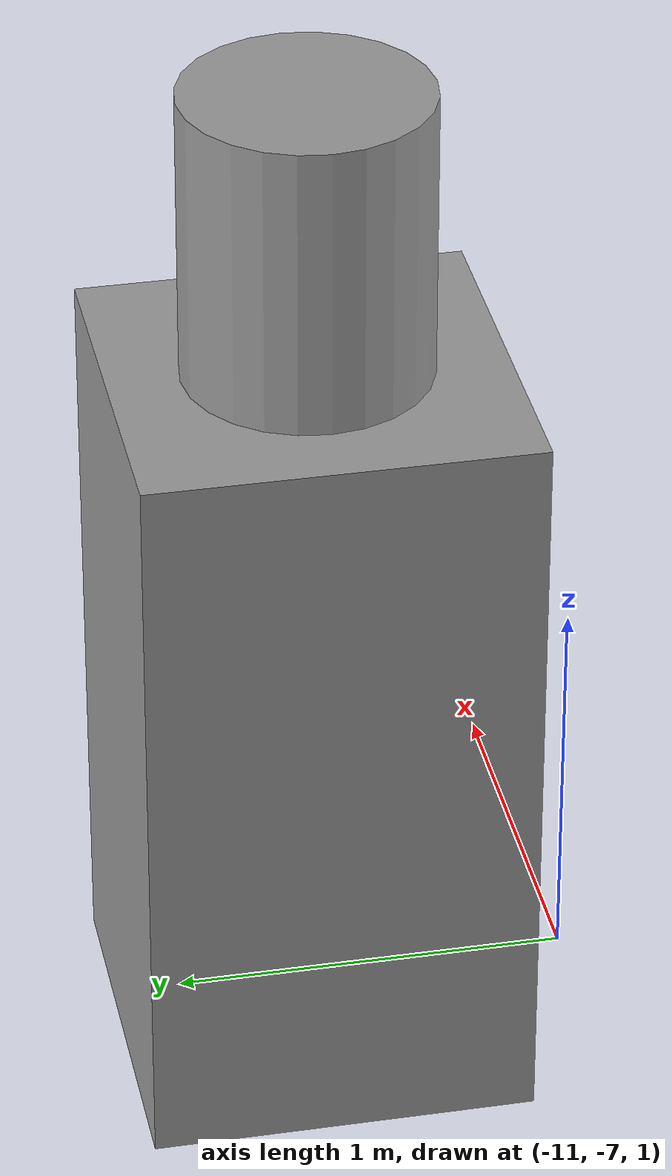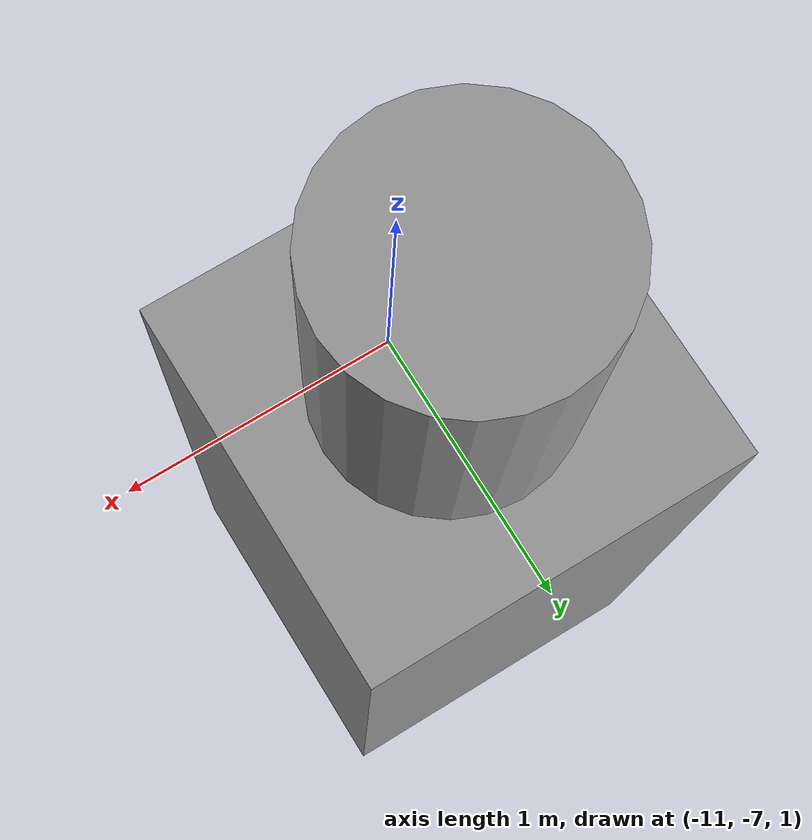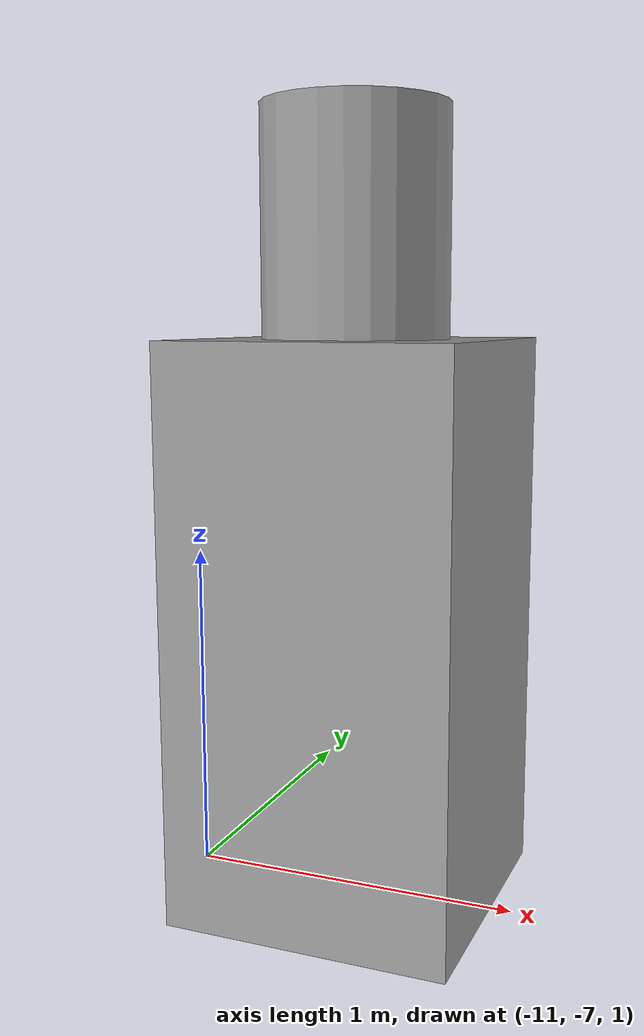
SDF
<?xml version='1.0'?>
<sdf version='1.6'>
  <model name='water_dispenser'>
    <link name='link_5'>
      <pose frame=''>-10.728 -6.39003 1.64708 0 -0 0</pose>
      <inertial>
        <mass>1.9827</mass>
        <inertia>
          <ixx>0.814745</ixx>
          <ixy>0</ixy>
          <ixz>0</ixz>
          <iyy>0.814745</iyy>
          <iyz>0</iyz>
          <izz>0.330451</izz>
        </inertia>
        <pose frame=''>0 0 0 0 -0 0</pose>
      </inertial>
      <self_collide>0</self_collide>
      <kinematic>0</kinematic>
      <visual name='visual'>
        <pose frame=''>0 0 0 0 -0 0</pose>
        <geometry>
          <box>
            <size>1 1 1.9827</size>
          </box>
        </geometry>
        <material>
          <lighting>1</lighting>
          <script>
            <uri>file://media/materials/scripts/gazebo.material</uri>
            <name>Gazebo/Grey</name>
          </script>
          <ambient>0.3 0.3 0.3 1</ambient>
          <diffuse>0.7 0.7 0.7 1</diffuse>
          <specular>0.01 0.01 0.01 1</specular>
          <emissive>0 0 0 1</emissive>
          <shader type='vertex'>
            <normal_map>__default__</normal_map>
          </shader>
        </material>
        <cast_shadows>1</cast_shadows>
        <transparency>0</transparency>
      </visual>
      <collision name='collision'>
        <laser_retro>0</laser_retro>
        <max_contacts>10</max_contacts>
        <pose frame=''>0 0 0 0 -0 0</pose>
        <geometry>
          <box>
            <size>1 1 1.9827</size>
          </box>
        </geometry>
        <surface>
          <friction>
            <ode>
              <mu>1</mu>
              <mu2>1</mu2>
              <fdir1>0 0 0</fdir1>
              <slip1>0</slip1>
              <slip2>0</slip2>
            </ode>
            <torsional>
              <coefficient>1</coefficient>
              <patch_radius>0</patch_radius>
              <surface_radius>0</surface_radius>
              <use_patch_radius>1</use_patch_radius>
              <ode>
                <slip>0</slip>
              </ode>
            </torsional>
          </friction>
          <bounce>
            <restitution_coefficient>0</restitution_coefficient>
            <threshold>1e+06</threshold>
          </bounce>
          <contact>
            <collide_without_contact>0</collide_without_contact>
            <collide_without_contact_bitmask>1</collide_without_contact_bitmask>
            <collide_bitmask>1</collide_bitmask>
            <ode>
              <soft_cfm>0</soft_cfm>
              <soft_erp>0.2</soft_erp>
              <kp>1e+13</kp>
              <kd>1</kd>
              <max_vel>0.01</max_vel>
              <min_depth>0</min_depth>
            </ode>
            <bullet>
              <split_impulse>1</split_impulse>
              <split_impulse_penetration_threshold>-0.01</split_impulse_penetration_threshold>
              <soft_cfm>0</soft_cfm>
              <soft_erp>0.2</soft_erp>
              <kp>1e+13</kp>
              <kd>1</kd>
            </bullet>
          </contact>
        </surface>
      </collision>
    </link>
    <link name='link_6'>
      <pose frame=''>-10.728 -6.39003 3.01806 0 -0 0</pose>
      <inertial>
        <mass>0.305954</mass>
        <inertia>
          <ixx>0.0224036</ixx>
          <ixy>0</ixy>
          <ixz>0</ixz>
          <iyy>0.0224036</iyy>
          <iyz>0</iyz>
          <izz>0.015411</izz>
        </inertia>
        <pose frame=''>0 0 0 0 -0 0</pose>
      </inertial>
      <self_collide>0</self_collide>
      <kinematic>0</kinematic>
      <visual name='visual'>
        <pose frame=''>0 0 0 0 -0 0</pose>
        <geometry>
          <cylinder>
            <radius>0.317396</radius>
            <length>0.759266</length>
          </cylinder>
        </geometry>
        <material>
          <lighting>1</lighting>
          <script>
            <uri>file://media/materials/scripts/gazebo.material</uri>
            <name>Gazebo/Grey</name>
          </script>
          <ambient>0.3 0.3 0.3 1</ambient>
          <diffuse>0.7 0.7 0.7 1</diffuse>
          <specular>0.01 0.01 0.01 1</specular>
          <emissive>0 0 0 1</emissive>
        </material>
        <cast_shadows>1</cast_shadows>
        <transparency>0</transparency>
      </visual>
      <collision name='collision'>
        <laser_retro>0</laser_retro>
        <max_contacts>10</max_contacts>
        <pose frame=''>0 0 0 0 -0 0</pose>
        <geometry>
          <cylinder>
            <radius>0.317396</radius>
            <length>0.759266</length>
          </cylinder>
        </geometry>
        <surface>
          <friction>
            <ode>
              <mu>1</mu>
              <mu2>1</mu2>
              <fdir1>0 0 0</fdir1>
              <slip1>0</slip1>
              <slip2>0</slip2>
            </ode>
            <torsional>
              <coefficient>1</coefficient>
              <patch_radius>0</patch_radius>
              <surface_radius>0</surface_radius>
              <use_patch_radius>1</use_patch_radius>
              <ode>
                <slip>0</slip>
              </ode>
            </torsional>
          </friction>
          <bounce>
            <restitution_coefficient>0</restitution_coefficient>
            <threshold>1e+06</threshold>
          </bounce>
          <contact>
            <collide_without_contact>0</collide_without_contact>
            <collide_without_contact_bitmask>1</collide_without_contact_bitmask>
            <collide_bitmask>1</collide_bitmask>
            <ode>
              <soft_cfm>0</soft_cfm>
              <soft_erp>0.2</soft_erp>
              <kp>1e+13</kp>
              <kd>1</kd>
              <max_vel>0.01</max_vel>
              <min_depth>0</min_depth>
            </ode>
            <bullet>
              <split_impulse>1</split_impulse>
              <split_impulse_penetration_threshold>-0.01</split_impulse_penetration_threshold>
              <soft_cfm>0</soft_cfm>
              <soft_erp>0.2</soft_erp>
              <kp>1e+13</kp>
              <kd>1</kd>
            </bullet>
          </contact>
        </surface>
      </collision>
    </link>
    <joint name='link_5_JOINT_9' type='revolute'>
      <parent>link_5</parent>
      <child>link_6</child>
      <pose frame=''>0 0 0 0 -0 0</pose>
      <axis>
        <xyz>1 0 0</xyz>
        <use_parent_model_frame>0</use_parent_model_frame>
        <limit>
          <lower>-1.79769e+308</lower>
          <upper>1.79769e+308</upper>
          <effort>-1</effort>
          <velocity>-1</velocity>
        </limit>
        <dynamics>
          <spring_reference>0</spring_reference>
          <spring_stiffness>0</spring_stiffness>
          <damping>0</damping>
          <friction>0</friction>
        </dynamics>
      </axis>
      <physics>
        <ode>
          <limit>
            <cfm>0</cfm>
            <erp>0.2</erp>
          </limit>
          <suspension>
            <cfm>0</cfm>
            <erp>0.2</erp>
          </suspension>
        </ode>
      </physics>
    </joint>
    <static>0</static>
    <allow_auto_disable>1</allow_auto_disable>
  </model>
</sdf>
